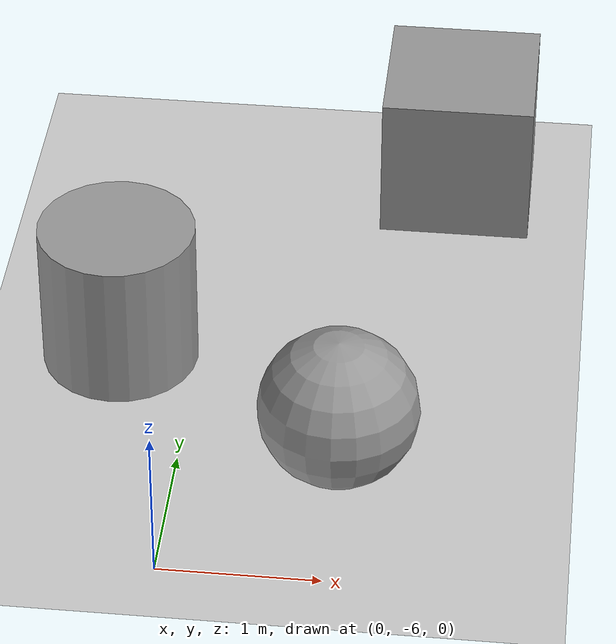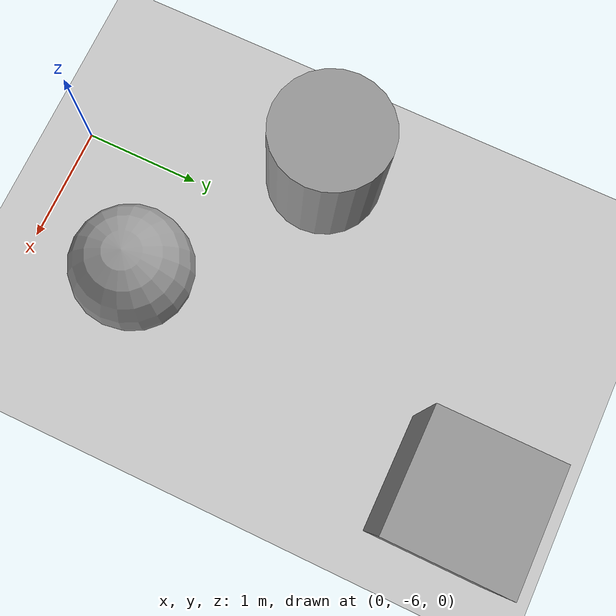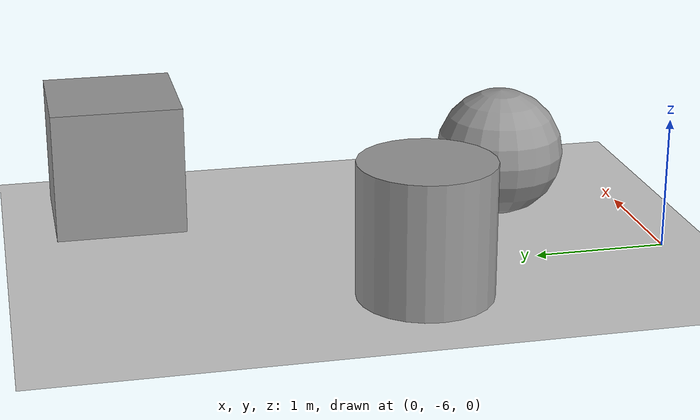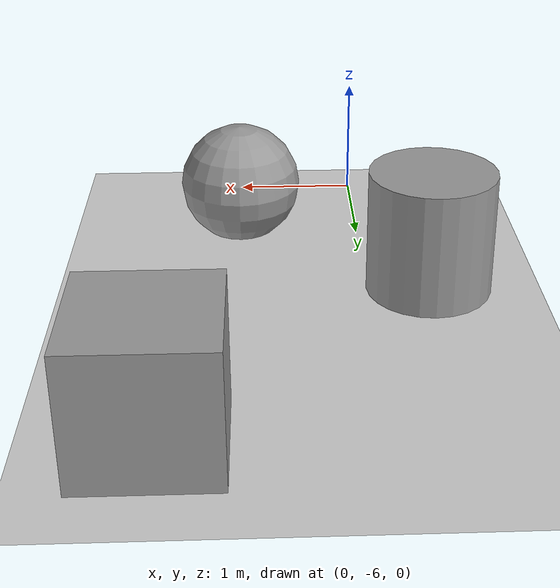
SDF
<sdf version='1.6'>
  <world name='default'>
    <light name='sun' type='directional'>
      <cast_shadows>1</cast_shadows>
      <pose frame=''>0 0 10 0 -0 0</pose>
      <diffuse>0.8 0.8 0.8 1</diffuse>
      <specular>0.1 0.1 0.1 1</specular>
      <attenuation>
        <range>1000</range>
        <constant>0.9</constant>
        <linear>0.01</linear>
        <quadratic>0.001</quadratic>
      </attenuation>
      <direction>-0.5 0.5 -1</direction>
    </light>
    <model name='ground_plane'>
      <static>1</static>
      <link name='link'>
        <collision name='collision'>
          <geometry>
            <plane>
              <normal>0 0 1</normal>
              <size>100 100</size>
            </plane>
          </geometry>
          <surface>
            <friction>
              <ode>
                <mu>100</mu>
                <mu2>50</mu2>
              </ode>
              <torsional>
                <ode/>
              </torsional>
            </friction>
            <contact>
              <ode/>
            </contact>
            <bounce/>
          </surface>
          <max_contacts>10</max_contacts>
        </collision>
        <visual name='visual'>
          <cast_shadows>0</cast_shadows>
          <geometry>
            <plane>
              <normal>0 0 1</normal>
              <size>100 100</size>
            </plane>
          </geometry>
          <material>
            <script>
              <uri>file://media/materials/scripts/gazebo.material</uri>
              <name>Gazebo/Grey</name>
            </script>
          </material>
        </visual>
        <self_collide>0</self_collide>
        <kinematic>0</kinematic>
        <gravity>1</gravity>
      </link>
    </model>
    <physics name='default_physics' default='0' type='ode'>
      <real_time_update_rate>1000</real_time_update_rate>
      <max_step_size>0.001</max_step_size>
      <real_time_factor>1</real_time_factor>
      <ode>
        <solver>
          <type>quick</type>
          <iters>150</iters>
          <precon_iters>0</precon_iters>
          <sor>1.4</sor>
          <use_dynamic_moi_rescaling>1</use_dynamic_moi_rescaling>
        </solver>
        <constraints>
          <cfm>1e-05</cfm>
          <erp>0.2</erp>
          <contact_max_correcting_vel>2000</contact_max_correcting_vel>
          <contact_surface_layer>0.01</contact_surface_layer>
        </constraints>
      </ode>
    </physics>
    <gravity>0 0 -9.8</gravity>
    <magnetic_field>6e-06 2.3e-05 -4.2e-05</magnetic_field>
    <atmosphere type='adiabatic'/>
    <scene>
      <ambient>0.4 0.4 0.4 1</ambient>
      <background>0.7 0.7 0.7 1</background>
      <shadows>1</shadows>
    </scene>
    <spherical_coordinates>
      <surface_model>EARTH_WGS84</surface_model>
      <latitude_deg>0</latitude_deg>
      <longitude_deg>0</longitude_deg>
      <elevation>0</elevation>
      <heading_deg>0</heading_deg>
    </spherical_coordinates>

    <model name='unit_sphere_0'>
      <pose frame=''>1 -5 0.5 0 -0 0</pose>
      <link name='link'>
        <inertial>
          <mass>1</mass>
          <inertia>
            <ixx>0.1</ixx>
            <ixy>0</ixy>
            <ixz>0</ixz>
            <iyy>0.1</iyy>
            <iyz>0</iyz>
            <izz>0.1</izz>
          </inertia>
        </inertial>
        <collision name='collision'>
          <geometry>
            <sphere>
              <radius>0.5</radius>
            </sphere>
          </geometry>
          <max_contacts>10</max_contacts>
          <surface>
            <contact>
              <ode/>
            </contact>
            <bounce/>
            <friction>
              <torsional>
                <ode/>
              </torsional>
              <ode/>
            </friction>
          </surface>
        </collision>
        <visual name='visual'>
          <geometry>
            <sphere>
              <radius>0.5</radius>
            </sphere>
          </geometry>
          <material>
            <script>
              <name>Gazebo/Grey</name>
              <uri>file://media/materials/scripts/gazebo.material</uri>
            </script>
          </material>
        </visual>
        <self_collide>0</self_collide>
        <kinematic>0</kinematic>
        <gravity>1</gravity>
      </link>
    </model>
    <model name='unit_cylinder_0'>
      <pose frame=''>-0.500368 -4 0.5 0 -0 0</pose>
      <link name='link'>
        <inertial>
          <mass>1</mass>
          <inertia>
            <ixx>0.145833</ixx>
            <ixy>0</ixy>
            <ixz>0</ixz>
            <iyy>0.145833</iyy>
            <iyz>0</iyz>
            <izz>0.125</izz>
          </inertia>
        </inertial>
        <collision name='collision'>
          <geometry>
            <cylinder>
              <radius>0.5</radius>
              <length>1</length>
            </cylinder>
          </geometry>
          <max_contacts>10</max_contacts>
          <surface>
            <contact>
              <ode/>
            </contact>
            <bounce/>
            <friction>
              <torsional>
                <ode/>
              </torsional>
              <ode/>
            </friction>
          </surface>
        </collision>
        <visual name='visual'>
          <geometry>
            <cylinder>
              <radius>0.5</radius>
              <length>1</length>
            </cylinder>
          </geometry>
          <material>
            <script>
              <name>Gazebo/Grey</name>
              <uri>file://media/materials/scripts/gazebo.material</uri>
            </script>
          </material>
        </visual>
        <self_collide>0</self_collide>
        <kinematic>0</kinematic>
        <gravity>1</gravity>
      </link>
    </model>
    <model name='unit_box_0'>
      <pose frame=''>1.54945 -2 0.5 0 -0 0</pose>
      <link name='link'>
        <inertial>
          <mass>1</mass>
          <inertia>
            <ixx>0.166667</ixx>
            <ixy>0</ixy>
            <ixz>0</ixz>
            <iyy>0.166667</iyy>
            <iyz>0</iyz>
            <izz>0.166667</izz>
          </inertia>
        </inertial>
        <collision name='collision'>
          <geometry>
            <box>
              <size>1 1 1</size>
            </box>
          </geometry>
          <max_contacts>10</max_contacts>
          <surface>
            <contact>
              <ode/>
            </contact>
            <bounce/>
            <friction>
              <torsional>
                <ode/>
              </torsional>
              <ode/>
            </friction>
          </surface>
        </collision>
        <visual name='visual'>
          <geometry>
            <box>
              <size>1 1 1</size>
            </box>
          </geometry>
          <material>
            <script>
              <name>Gazebo/Grey</name>
              <uri>file://media/materials/scripts/gazebo.material</uri>
            </script>
          </material>
        </visual>
        <self_collide>0</self_collide>
        <kinematic>0</kinematic>
        <gravity>1</gravity>
      </link>
    </model>
    <light name='user_point_light_0' type='point'>
      <pose frame=''>-4.28837 1.49988 1 0 -0 0</pose>
      <diffuse>0.5 0.5 0.5 1</diffuse>
      <specular>0.1 0.1 0.1 1</specular>
      <attenuation>
        <range>20</range>
        <constant>0.5</constant>
        <linear>0.01</linear>
        <quadratic>0.001</quadratic>
      </attenuation>
      <cast_shadows>0</cast_shadows>
      <direction>0 0 -1</direction>
    </light>
    <light name='user_point_light_1' type='point'>
      <pose frame=''>3.58786 3.16908 1 0 -0 0</pose>
      <diffuse>0.5 0.5 0.5 1</diffuse>
      <specular>0.1 0.1 0.1 1</specular>
      <attenuation>
        <range>20</range>
        <constant>0.5</constant>
        <linear>0.01</linear>
        <quadratic>0.001</quadratic>
      </attenuation>
      <cast_shadows>0</cast_shadows>
      <direction>0 0 -1</direction>
    </light>
    <gui fullscreen='0'>
      <camera name='user_camera'>
        <pose frame=''>6.95101 -0.194612 11.2553 0 1.07564 -2.70699</pose>
        <view_controller>orbit</view_controller>
        <projection_type>perspective</projection_type>
      </camera>
    </gui>
  </world>
</sdf>
